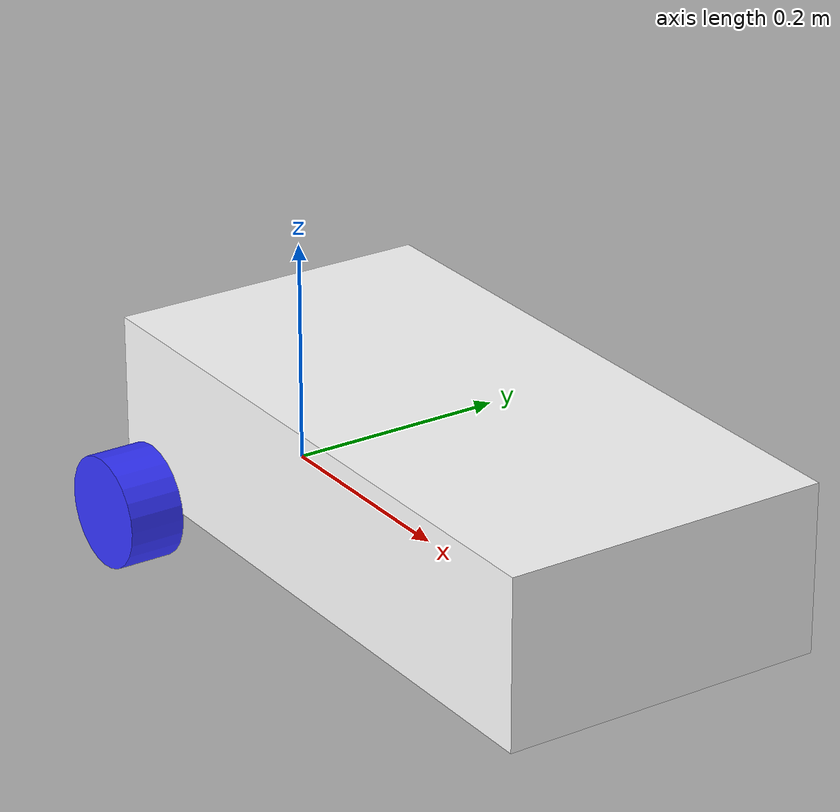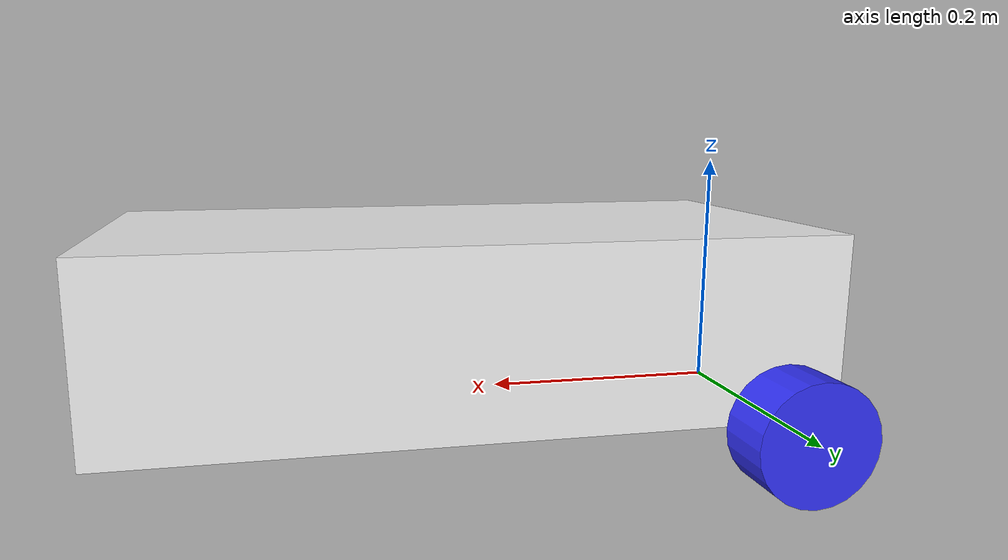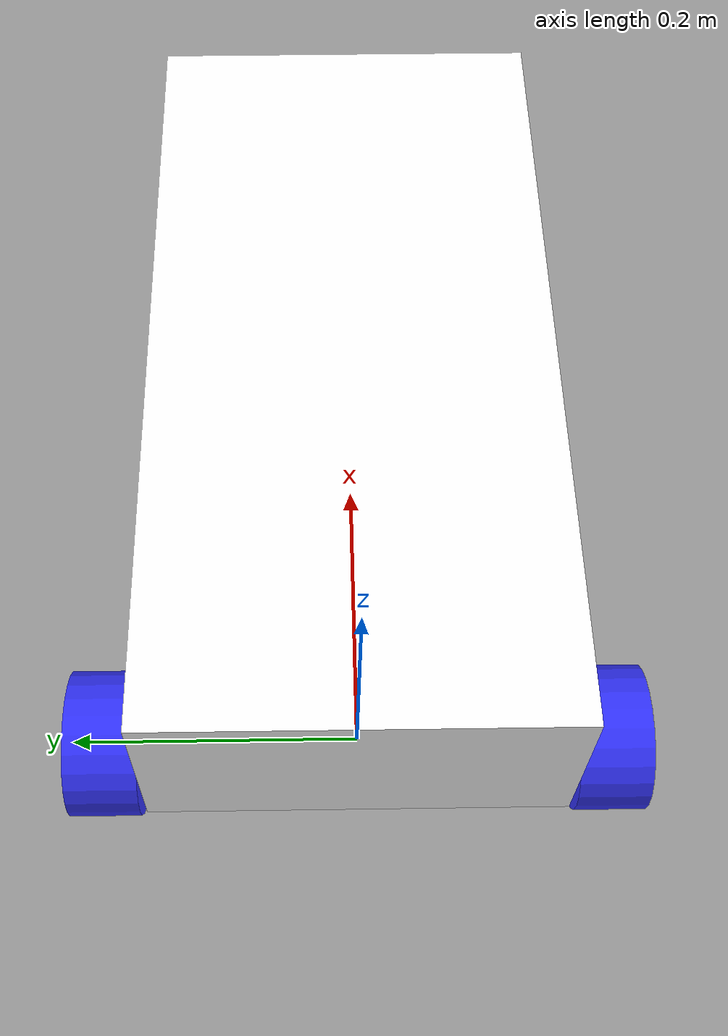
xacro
<?xml version="1.0"?>
<robot xmlns:xacro="http://www.ros.org/wiki/xacro">

    <xacro:include filename="inertial_macros.xacro"/>

    <material name="white">
        <color rgba="1 1 1 1"/>
    </material>

    <material name="orange">
        <color rgba="1 0.3 0.1 1"/>
    </material>

    <material name="blue">
        <color rgba="0.2 0.2 1 1"/>
    </material>

    <material name="black">
        <color rgba="0 0 0 1"/>
    </material>

    <!-- BASE LINK-->
    <link name="base_link">

    </link>

    <!-- CHASSIS LINK-->

    <joint name="chassis_joint" type="fixed">
        <parent link="base_link"/>
        <child link="chassis"/>
        <origin xyz="-0.05 0 0"/>
    </joint>

    <link name="chassis">
        <visual>
            <origin xyz="0.29 0 0.075"/>
            <geometry>
               <box size="0.58 0.29 0.15"/>
            </geometry>
            <material name="white"/>
        </visual>
        <collision>
            <origin xyz="0.29 0 0.075"/>
            <geometry>
               <box size="0.58 0.29 0.15"/>
            </geometry>
        </collision>
        <xacro:inertial_box mass="4" x="0.58" y="0.29" z="0.15">
            <origin xyz="0.29 0 0.075" rpy="0 0 0"/>
        </xacro:inertial_box>
    </link>

    <!-- LEFT WHEEL-->

    <joint name="left_wheel_joint" type="continuous">
        <parent link="base_link"/>
        <child link="left_wheel"/>
        <origin xyz="0 0.175 0 " rpy="-${pi/2} 0 0"/>
        <axis xyz="0 0 1"/>
    </joint>

    <link name="left_wheel">
        <visual>
            <geometry>
                <cylinder radius="0.05" length="0.05"/>
            </geometry>
            <material name="blue"/>
        </visual>
        <collision>
            <geometry>
                <cylinder radius="0.05" length="0.05"/>
            </geometry>
        </collision>
        <xacro:inertial_cylinder mass="0.2" length="0.05" radius="0.05">
            <origin xyz="0 0 0" rpy="0 0 0"/>
        </xacro:inertial_cylinder>
    </link>

    <!-- RIGHT WHEEL-->

    <joint name="right_wheel_joint" type="continuous">
        <parent link="base_link"/>
        <child link="right_wheel"/>
        <origin xyz="0 -0.175 0 " rpy="${pi/2} 0 0"/>
        <axis xyz="0 0 -1"/>
    </joint>

    <link name="right_wheel">
        <visual>
            <geometry>
                <cylinder radius="0.05" length="0.05"/>
            </geometry>
            <material name="blue"/>
        </visual>
        <collision>
            <geometry>
                <cylinder radius="0.05" length="0.05"/>
            </geometry>
        </collision>
        <xacro:inertial_cylinder mass="0.2" length="0.05" radius="0.05">
            <origin xyz="0 0 0" rpy="0 0 0"/>
        </xacro:inertial_cylinder>
    </link>

    <!-- CASTER WHEEl LINK-->

    <joint name="caster_wheel_joint" type="fixed">
        <parent link="chassis"/>
        <child link="caster_wheel"/>
        <origin xyz="0.4 0 0"/>
    </joint>

    <link name="caster_wheel">
        <visual>
            <geometry>
                <sphere radius="0.05"/>
            </geometry>
            <materisl name="black"/>
        </visual>
        <collision>
            <geometry>
                <sphere radius="0.05"/>
            </geometry>
        </collision>
        <xacro:inertial_sphere mass="0.1" radius="0.05">
            <origin xyz="0 0 0" rpy="0 0 0"/>
        </xacro:inertial_sphere>
    </link>
</robot>
